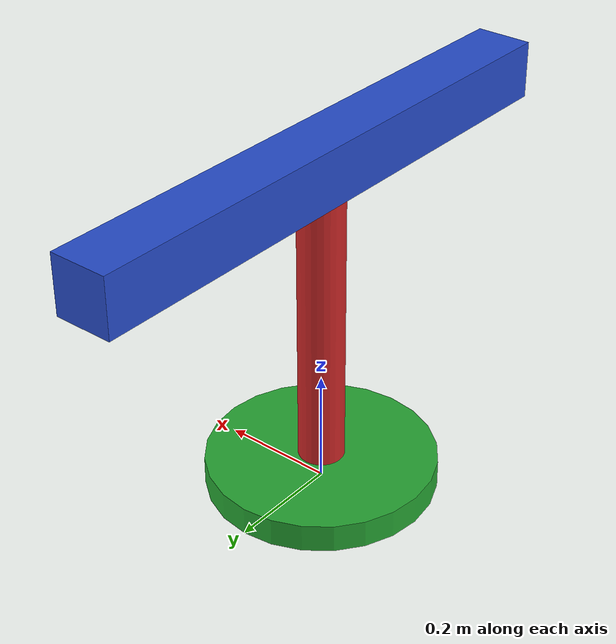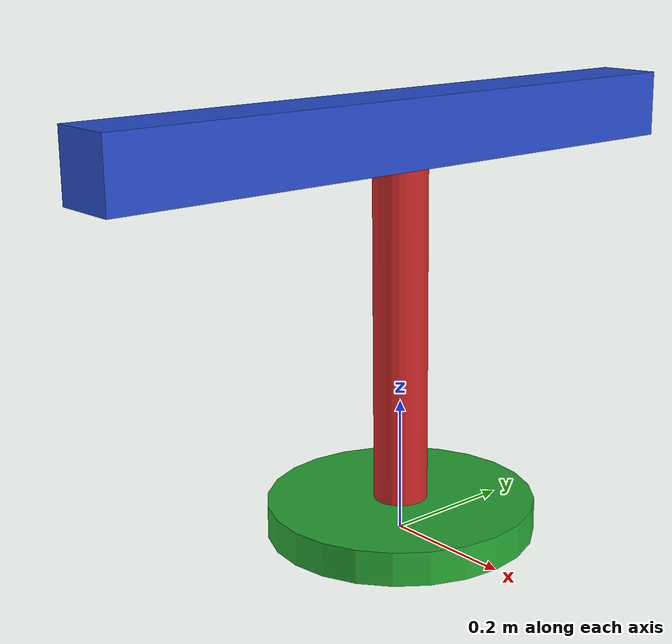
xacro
<?xml version="1.0"?>
<robot xmlns:xacro="http://www.ros.org/wiki/xacro" name="simple_robot">

    <!-- Robot Geometry -->
    <xacro:property name="base_link_length" value="0.05"/>
    <xacro:property name="base_link_radius" value="0.2"/>

    <xacro:property name="first_link_length" value="0.5"/>
    <xacro:property name="first_link_radius" value="0.04"/>

    <xacro:property name="second_link_length" value="1.0"/>
    <xacro:property name="second_link_height" value="0.1"/>
    <xacro:property name="second_link_width" value="0.1"/>

    <!-- Joint Limits -->
    <xacro:property name="limits_revolute_upper" value="3.14"/>
    <xacro:property name="limits_revolute_lower" value="-3.14"/>
    <xacro:property name="limits_revolute_velocity" value="3.14"/>
    <xacro:property name="limits_revolute_effort" value="300"/>

    <xacro:property name="limits_prismatic_upper" value="0.5"/>
    <xacro:property name="limits_prismatic_lower" value="-0.5"/>
    <xacro:property name="limits_prismatic_velocity" value="0.8"/>
    <xacro:property name="limits_prismatic_effort" value="300"/>

    <!-- Load material properties -->
    <xacro:include filename="$(find robot_gazebo_model_pkg)/urdf/robot.gazebo"/>

    <!-- Base Link  -->
    <link name="base_link">
        <visual>
            <origin xyz="0.0 0.0 ${base_link_length/2}" rpy="0.0 0.0 0.0"/>
            <geometry>
                <cylinder radius="${base_link_radius}" length="${base_link_length}"/>
            </geometry>
        </visual>

        <collision>
            <geometry>
                <cylinder radius="${base_link_radius}" length="${base_link_length}"/>
            </geometry>
            <origin xyz="0.0 0.0 ${base_link_length/2}" rpy="0.0 0.0 0.0"/>
        </collision>

        <inertial>
            <origin xyz="0.0 0.0 ${base_link_length/2}" rpy="0.0 0.0 0.0"/>
            <mass value="1.0"/>
            <inertia ixx="100.0" ixy="0.0" ixz="0.0" iyy="100.0" iyz="0.0" izz="100.0"/>
        </inertial>
    </link>

    <!-- Joint - 1 -->
    <joint name="joint_1" type="revolute">
        <origin xyz="0.0 0.0 ${base_link_length}" rpy="0.0 0.0 0.0"/>
        <parent link="base_link"/>
        <child link="first_link"/>
        <axis xyz="0.0 0.0 1.0"/>
        <limit lower="${limits_revolute_lower}"
               upper="${limits_revolute_upper}"
               effort="${limits_revolute_effort}"
               velocity="${limits_revolute_velocity}"/>
    </joint>

    <!-- First Link  -->
    <link name="first_link">
        <visual>
            <origin xyz="0.0 0.0 ${first_link_length/2}" rpy="0.0 0.0 0.0"/>
            <geometry>
                <cylinder radius="${first_link_radius}" length="${first_link_length}"/>
            </geometry>
        </visual>

        <collision>
            <geometry>
                <cylinder radius="${first_link_radius}" length="${first_link_length}"/>
            </geometry>
            <origin xyz="0.0 0.0 ${first_link_length/2}" rpy="0.0 0.0 0.0"/>
        </collision>

        <inertial>
            <origin xyz="0.0 0.0 ${first_link_length/2}" rpy="0.0 0.0 0.0"/>
            <mass value="1.0"/>
            <inertia ixx="100.0" ixy="0.0" ixz="0.0" iyy="100.0" iyz="0.0" izz="100.0"/>
        </inertial>
    </link>

    <!-- Joint - 2 -->
    <joint name="joint_2" type="prismatic">
        <origin xyz="0.0 0.0 ${first_link_length}" rpy="0.0 0.0 0.0"/>
        <parent link="first_link"/>
        <child link="second_link"/>
        <axis xyz="0.0 1.0 0.0"/>
        <limit lower="${limits_prismatic_lower}"
               upper="${limits_prismatic_upper}"
               effort="${limits_prismatic_effort}"
               velocity="${limits_prismatic_velocity}"/>
    </joint>

    <!-- Second Link  -->
    <link name="second_link">
        <visual>
            <origin xyz="0.0 0.0 ${second_link_height/2}" rpy="0.0 0.0 0.0"/>
            <geometry>
                <box size="${second_link_width} ${second_link_length} ${second_link_height}"/>
            </geometry>
        </visual>

        <collision>
            <origin xyz="0.0 0.0 ${second_link_height/2}" rpy="0.0 0.0 0.0"/>
            <geometry>
                <box size="${second_link_width} ${second_link_length} ${second_link_height}"/>
            </geometry>
        </collision>

        <inertial>
            <origin xyz="0.0 0.0 ${second_link_height/2}" rpy="0.0 0.0 0.0"/>
            <mass value="1.0"/>
            <inertia ixx="100.0" ixy="0.0" ixz="0.0" iyy="100.0" iyz="0.0" izz="100.0"/>
        </inertial>
    </link>
</robot>
